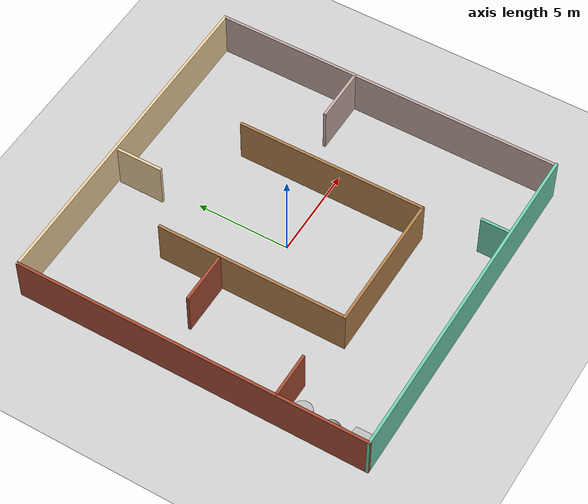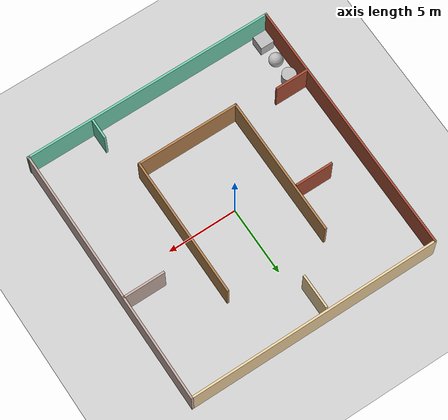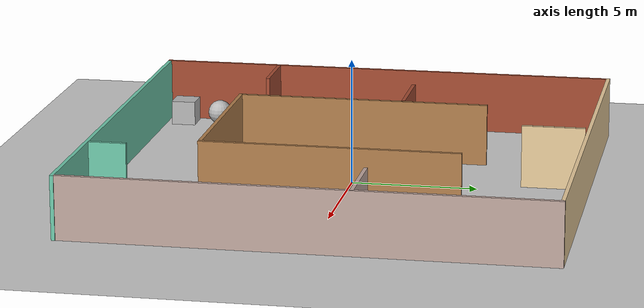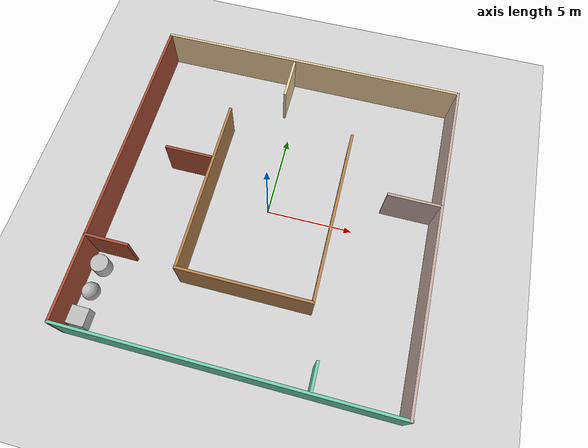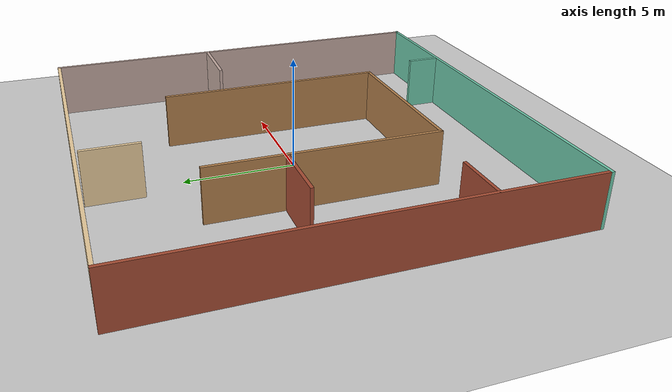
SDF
<sdf version="1.6">
 <world name="default">
  <light name="sun" type="directional">
   <pose>0 0 10 0 -0 0</pose>
   <diffuse>0.8 0.8 0.8 1</diffuse>
   <specular>0.1 0.1 0.1 1</specular>
   <attenuation>
    <range>1000</range>
    <constant>0.9</constant>
    <linear>0.01</linear>
    <quadratic>0.001</quadratic>
   </attenuation>
   <direction>-0.5 0.5 -1</direction>
  </light>
  <model name="ground_plane">
   <static>1</static>
   <link name="link">
    <collision name="collision">
     <geometry><plane><normal>0 0 1</normal><size>100 100</size></plane></geometry>
     <surface><friction><ode><mu>100</mu><mu2>50</mu2></ode></friction></surface>
    </collision>
    <visual name="visual">
     <cast_shadows>0</cast_shadows>
     <geometry><plane><normal>0 0 1</normal><size>100 100</size></plane></geometry>
     <material>
      <script><uri>file://media/materials/scripts/gazebo.material</uri><name>Gazebo/Grey</name></script>
     </material>
    </visual>
   </link>
  </model>
  <gravity>0 0 -9.8</gravity>
  <magnetic_field>6e-06 2.3e-05 -4.2e-05</magnetic_field>
  <atmosphere type="adiabatic"/>
  <physics name="default_physics" default="0" type="ode">
   <max_step_size>0.001</max_step_size>
   <real_time_factor>1</real_time_factor>
   <real_time_update_rate>1000</real_time_update_rate>
  </physics>
  <scene><ambient>0.4 0.4 0.4 1</ambient><background>0.7 0.7 0.7 1</background><shadows>1</shadows></scene>
  <spherical_coordinates>
   <surface_model>EARTH_WGS84</surface_model>
   <latitude_deg>0</latitude_deg>
   <longitude_deg>0</longitude_deg>
   <elevation>0</elevation>
   <heading_deg>0</heading_deg>
  </spherical_coordinates>
  <model name="test_building">
   <pose>0.32235 -0.088201 0 0 -0 0</pose>
   <link name="Wall_1">
    <collision name="Wall_1_Collision">
     <geometry><box><size>19 0.15 2.5</size></box></geometry>
     <pose>0 0 1.25 0 -0 0</pose>
    </collision>
    <visual name="Wall_1_Visual">
     <pose>0 0 1.25 0 -0 0</pose>
     <geometry><box><size>19 0.15 2.5</size></box></geometry>
     <material>
      <script><uri>file://media/materials/scripts/gazebo.material</uri><name>Gazebo/Grey</name></script>
      <ambient>0.760784 0.662745 0.627451 1</ambient>
     </material>
    </visual>
    <pose>9.06759 0 0 0 0 -1.5708</pose>
   </link>
   <link name="Wall_10">
    <collision name="Wall_10_Collision">
     <geometry><box><size>7.5 0.15 2.5</size></box></geometry>
     <pose>0 0 1.25 0 -0 0</pose>
    </collision>
    <visual name="Wall_10_Visual">
     <pose>0 0 1.25 0 -0 0</pose>
     <geometry><box><size>7.5 0.15 2.5</size></box></geometry>
     <material>
      <script><uri>file://media/materials/scripts/gazebo.material</uri><name>Gazebo/Wood</name></script>
      <ambient>1 1 1 1</ambient>
     </material>
    </visual>
    <pose>-0.203696 -5.16672 0 0 -0 0</pose>
   </link>
   <link name="Wall_11">
    <collision name="Wall_11_Collision">
     <geometry><box><size>10.25 0.15 2.5</size></box></geometry>
     <pose>0 0 1.25 0 -0 0</pose>
    </collision>
    <visual name="Wall_11_Visual">
     <pose>0 0 1.25 0 -0 0</pose>
     <geometry><box><size>10.25 0.15 2.5</size></box></geometry>
     <material>
      <script><uri>file://media/materials/scripts/gazebo.material</uri><name>Gazebo/Wood</name></script>
      <ambient>1 1 1 1</ambient>
     </material>
    </visual>
    <pose>3.4713 -0.116718 0 0 -0 1.5708</pose>
   </link>
   <link name="Wall_13">
    <collision name="Wall_13_Collision">
     <geometry><box><size>3 0.15 2.5</size></box></geometry>
     <pose>0 0 1.25 0 -0 0</pose>
    </collision>
    <visual name="Wall_13_Visual">
     <pose>0 0 1.25 0 -0 0</pose>
     <geometry><box><size>3 0.15 2.5</size></box></geometry>
     <material>
      <script><uri>file://media/materials/scripts/gazebo.material</uri><name>Gazebo/Grey</name></script>
      <ambient>0.760784 0.662745 0.627451 1</ambient>
     </material>
    </visual>
    <pose>7.57173 1.76719 0 0 -0 3.14159</pose>
   </link>
   <link name="Wall_15">
    <collision name="Wall_15_Collision">
     <geometry><box><size>2.75 0.15 2.5</size></box></geometry>
     <pose>0 0 1.25 0 -0 0</pose>
    </collision>
    <visual name="Wall_15_Visual">
     <pose>0 0 1.25 0 -0 0</pose>
     <geometry><box><size>2.75 0.15 2.5</size></box></geometry>
     <material>
      <script><uri>file://media/materials/scripts/gazebo.material</uri><name>Gazebo/Bricks</name></script>
      <ambient>1 1 1 1</ambient>
     </material>
    </visual>
    <pose>-5.35834 1.55612 0 0 -0 3.14159</pose>
   </link>
   <link name="Wall_17">
    <collision name="Wall_17_Collision">
     <geometry><box><size>2.5 0.15 2.5</size></box></geometry>
     <pose>0 0 1.25 0 -0 0</pose>
    </collision>
    <visual name="Wall_17_Visual">
     <pose>0 0 1.25 0 -0 0</pose>
     <geometry><box><size>2.5 0.15 2.5</size></box></geometry>
     <material>
      <script><uri>file://media/materials/scripts/gazebo.material</uri><name>Gazebo/Bricks</name></script>
      <ambient>1 1 1 1</ambient>
     </material>
    </visual>
    <pose>-7.91015 -4.63534 0 0 -0 0</pose>
   </link>
   <link name="Wall_19">
    <collision name="Wall_19_Collision">
     <geometry><box><size>1.5 0.15 2.5</size></box></geometry>
     <pose>0 0 1.25 0 -0 0</pose>
    </collision>
    <visual name="Wall_19_Visual">
     <pose>0 0 1.25 0 -0 0</pose>
     <geometry><box><size>1.5 0.15 2.5</size></box></geometry>
     <material>
      <script><uri>file://media/materials/scripts/gazebo.material</uri><name>Gazebo/Grey</name></script>
      <ambient>0.435294 0.796078 0.67451 1</ambient>
     </material>
    </visual>
    <pose>4.31796 -8.61715 0 0 0 -1.5708</pose>
   </link>
   <link name="Wall_2">
    <collision name="Wall_2_Collision">
     <geometry><box><size>18.3555 0.15 2.5</size></box></geometry>
     <pose>0 0 1.25 0 -0 0</pose>
    </collision>
    <visual name="Wall_2_Visual">
     <pose>0 0 1.25 0 -0 0</pose>
     <geometry><box><size>18.3555 0.15 2.5</size></box></geometry>
     <material>
      <script><uri>file://media/materials/scripts/gazebo.material</uri><name>Gazebo/Grey</name></script>
      <ambient>0.435294 0.796078 0.67451 1</ambient>
     </material>
    </visual>
    <pose>1e-06 -9.425 0 0 -0 3.14159</pose>
   </link>
   <link name="Wall_21">
    <collision name="Wall_21_Collision">
     <geometry><box><size>2.5 0.15 2.5</size></box></geometry>
     <pose>0 0 1.25 0 -0 0</pose>
    </collision>
    <visual name="Wall_21_Visual">
     <pose>0 0 1.25 0 -0 0</pose>
     <geometry><box><size>2.5 0.15 2.5</size></box></geometry>
     <material>
      <script><uri>file://media/materials/scripts/gazebo.material</uri><name>Gazebo/Grey</name></script>
      <ambient>0.921569 0.807843 0.615686 1</ambient>
     </material>
    </visual>
    <pose>-1.00246 8.01007 0 0 0 -1.5708</pose>
   </link>
   <link name="Wall_3">
    <collision name="Wall_3_Collision">
     <geometry><box><size>19 0.15 2.5</size></box></geometry>
     <pose>0 0 1.25 0 -0 0</pose>
    </collision>
    <visual name="Wall_3_Visual">
     <pose>0 0 1.25 0 -0 0</pose>
     <geometry><box><size>19 0.15 2.5</size></box></geometry>
     <material>
      <script><uri>file://media/materials/scripts/gazebo.material</uri><name>Gazebo/Bricks</name></script>
      <ambient>1 1 1 1</ambient>
     </material>
    </visual>
    <pose>-9.10277 0 0 0 -0 1.5708</pose>
   </link>
   <link name="Wall_7">
    <collision name="Wall_7_Collision">
     <geometry><box><size>18.3204 0.15 2.5</size></box></geometry>
     <pose>0 0 1.25 0 -0 0</pose>
    </collision>
    <visual name="Wall_7_Visual">
     <pose>0 0 1.25 0 -0 0</pose>
     <geometry><box><size>18.3204 0.15 2.5</size></box></geometry>
     <material>
      <script><uri>file://media/materials/scripts/gazebo.material</uri><name>Gazebo/Grey</name></script>
      <ambient>0.921569 0.807843 0.615686 1</ambient>
     </material>
    </visual>
    <pose>-0.017589 9.425 0 0 -0 3.14159</pose>
   </link>
   <link name="Wall_9">
    <collision name="Wall_9_Collision">
     <geometry><box><size>10.25 0.15 2.5</size></box></geometry>
     <pose>0 0 1.25 0 -0 0</pose>
    </collision>
    <visual name="Wall_9_Visual">
     <pose>0 0 1.25 0 -0 0</pose>
     <geometry><box><size>10.25 0.15 2.5</size></box></geometry>
     <material>
      <script><uri>file://media/materials/scripts/gazebo.material</uri><name>Gazebo/Wood</name></script>
      <ambient>1 1 1 1</ambient>
     </material>
    </visual>
    <pose>-3.8787 -0.116718 0 0 0 -1.5708</pose>
   </link>
   <static>1</static>
  </model>
  <model name="textured_shapes">
   <pose>-8.04111 -7.17445 0.5 0 -0 0</pose>
   <link name="box">
    <pose>0 -1.5 0 0 -0 0</pose>
    <collision name="collision"><geometry><box><size>1 1 1</size></box></geometry></collision>
    <visual name="visual">
     <geometry><box><size>1 1 1</size></box></geometry>
     <material>
      <script>
       <uri>model://textured_shapes/materials/scripts</uri>
       <uri>model://textured_shapes/materials/textures</uri>
       <name>TexturedShape/Squares</name>
      </script>
     </material>
    </visual>
    <inertial>
     <inertia><ixx>1</ixx><ixy>0</ixy><ixz>0</ixz><iyy>1</iyy><iyz>0</iyz><izz>1</izz></inertia>
     <mass>1</mass>
    </inertial>
   </link>
   <link name="sphere">
    <collision name="collision"><geometry><sphere><radius>0.5</radius></sphere></geometry></collision>
    <visual name="visual">
     <geometry><sphere><radius>0.5</radius></sphere></geometry>
     <material>
      <script>
       <uri>model://textured_shapes/materials/scripts</uri>
       <uri>model://textured_shapes/materials/textures</uri>
       <name>TexturedShape/Squares</name>
      </script>
     </material>
    </visual>
    <inertial>
     <inertia><ixx>1</ixx><ixy>0</ixy><ixz>0</ixz><iyy>1</iyy><iyz>0</iyz><izz>1</izz></inertia>
     <mass>1</mass>
    </inertial>
   </link>
   <link name="cylinder">
    <pose>0 1.5 0 0 -0 0</pose>
    <collision name="collision">
     <geometry><cylinder><radius>0.5</radius><length>1</length></cylinder></geometry>
    </collision>
    <visual name="visual">
     <geometry><cylinder><radius>0.5</radius><length>1</length></cylinder></geometry>
     <material>
      <script>
       <uri>model://textured_shapes/materials/scripts</uri>
       <uri>model://textured_shapes/materials/textures</uri>
       <name>TexturedShape/Squares</name>
      </script>
     </material>
    </visual>
    <inertial>
     <inertia><ixx>1</ixx><ixy>0</ixy><ixz>0</ixz><iyy>1</iyy><iyz>0</iyz><izz>1</izz></inertia>
     <mass>1</mass>
    </inertial>
   </link>
  </model>
 </world>
</sdf>
